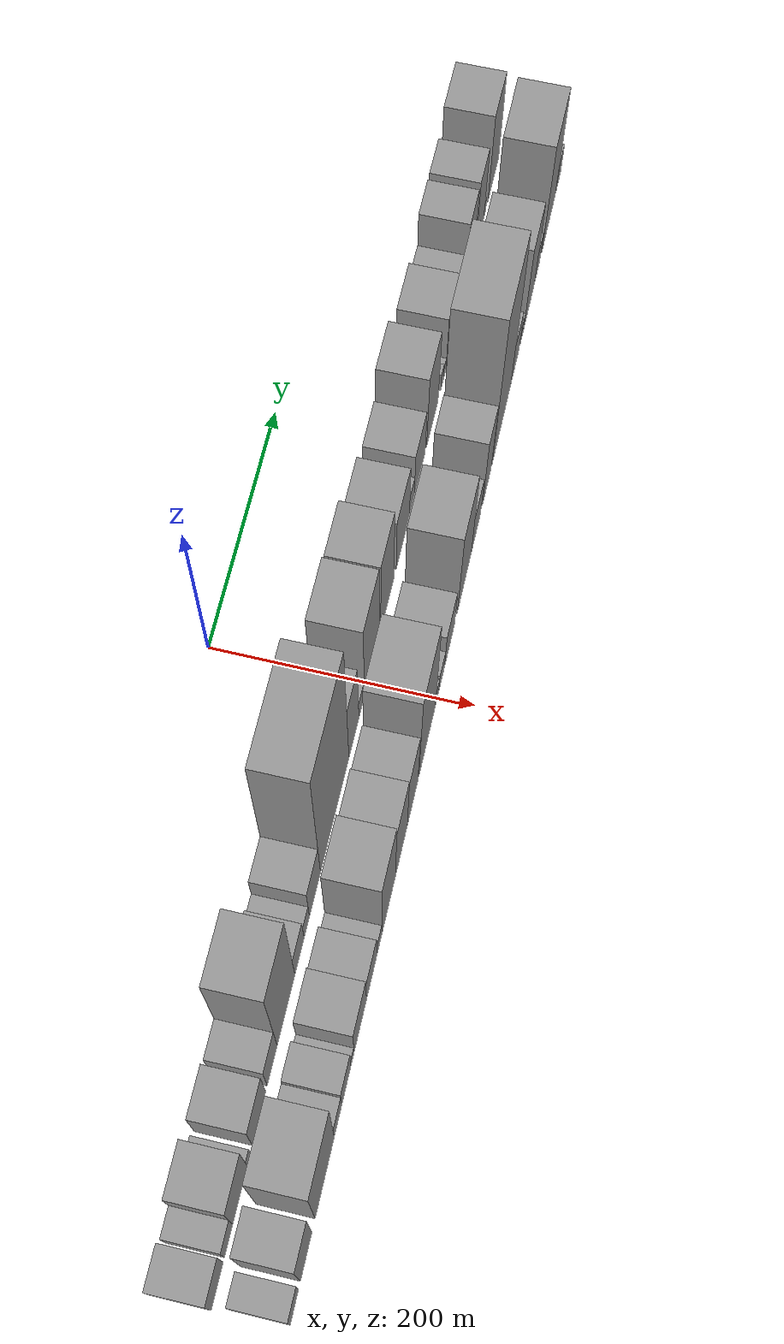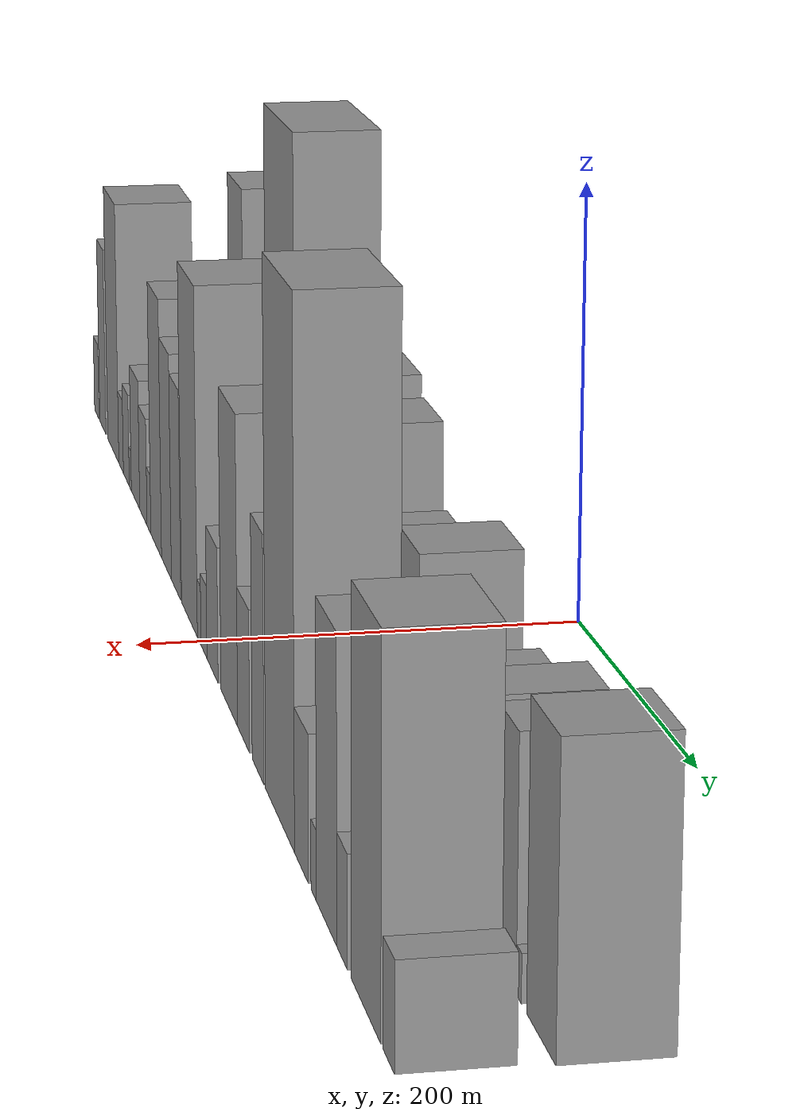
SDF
<sdf version="1.6">
 <world name="default">
  <scene>
   <sky><clouds><speed>12</speed></clouds></sky>
   <ambient>0.4 0.4 0.4 1</ambient>
   <background>0.7 0.7 0.7 1</background>
   <shadows>1</shadows>
  </scene>
  <gravity>0 0 -9.8066</gravity>
  <magnetic_field>6e-06 2.3e-05 -4.2e-05</magnetic_field>
  <physics default="0" name="default_physics" type="ode">
   <ode>
    <solver>
     <type>quick</type>
     <iters>10</iters>
     <sor>1.0</sor>
     <use_dynamic_moi_rescaling>0</use_dynamic_moi_rescaling>
    </solver>
    <constraints>
     <cfm>0</cfm>
     <erp>0.2</erp>
     <contact_max_correcting_vel>100</contact_max_correcting_vel>
     <contact_surface_layer>0.001</contact_surface_layer>
    </constraints>
   </ode>
   <max_step_size>0.004</max_step_size>
   <real_time_factor>1</real_time_factor>
   <real_time_update_rate>250</real_time_update_rate>
  </physics>
  <light name="sun" type="directional">
   <pose>0 0 10 0 0 0</pose>
   <diffuse>0.8 0.8 0.8 1</diffuse>
   <specular>0.2 0.2 0.2 1</specular>
   <attenuation>
    <range>1000</range>
    <constant>0.9</constant>
    <linear>0.01</linear>
    <quadratic>0.001</quadratic>
   </attenuation>
   <direction>-0.5 0.1 -0.9</direction>
  </light>
  <model name="building_1">
   <static>1</static>
   <pose>100.0000 -428.7235 0 0.000000 0.000000 0.000000</pose>
   <link name="link">
    <pose>0 0 25.50 0 0 0</pose>
    <collision name="collision"><geometry><box><size>40.0000 30.5529 51.0000</size></box></geometry></collision>
    <visual name="visual">
     <cast_shadows>0</cast_shadows>
     <geometry><box><size>40.0000 30.5529 51.0000</size></box></geometry>
     <material>
      <script>
       <uri>model://grey_wall/materials/scripts</uri>
       <uri>model://grey_wall/materials/textures</uri>
       <name>vrc/grey_wall</name>
      </script>
     </material>
    </visual>
   </link>
  </model>
  <model name="building_2">
   <static>1</static>
   <pose>100.0000 -399.7224 0 0.000000 0.000000 0.000000</pose>
   <link name="link">
    <pose>0 0 18.00 0 0 0</pose>
    <collision name="collision"><geometry><box><size>40.0000 21.4493 36.0000</size></box></geometry></collision>
    <visual name="visual">
     <cast_shadows>0</cast_shadows>
     <geometry><box><size>40.0000 21.4493 36.0000</size></box></geometry>
     <material>
      <script>
       <uri>model://grey_wall/materials/scripts</uri>
       <uri>model://grey_wall/materials/textures</uri>
       <name>vrc/grey_wall</name>
      </script>
     </material>
    </visual>
   </link>
  </model>
  <model name="building_3">
   <static>1</static>
   <pose>100.0000 -369.9463 0 0.000000 0.000000 0.000000</pose>
   <link name="link">
    <pose>0 0 37.50 0 0 0</pose>
    <collision name="collision"><geometry><box><size>40.0000 38.1030 75.0000</size></box></geometry></collision>
    <visual name="visual">
     <cast_shadows>0</cast_shadows>
     <geometry><box><size>40.0000 38.1030 75.0000</size></box></geometry>
     <material>
      <script>
       <uri>model://grey_wall/materials/scripts</uri>
       <uri>model://grey_wall/materials/textures</uri>
       <name>vrc/grey_wall</name>
      </script>
     </material>
    </visual>
   </link>
  </model>
  <model name="building_4">
   <static>1</static>
   <pose>100.0000 -346.6126 0 0.000000 0.000000 0.000000</pose>
   <link name="link">
    <pose>0 0 10.50 0 0 0</pose>
    <collision name="collision"><geometry><box><size>40.0000 8.5644 21.0000</size></box></geometry></collision>
    <visual name="visual">
     <cast_shadows>0</cast_shadows>
     <geometry><box><size>40.0000 8.5644 21.0000</size></box></geometry>
     <material>
      <script>
       <uri>model://grey_wall/materials/scripts</uri>
       <uri>model://grey_wall/materials/textures</uri>
       <name>vrc/grey_wall</name>
      </script>
     </material>
    </visual>
   </link>
  </model>
  <model name="building_5">
   <static>1</static>
   <pose>100.0000 -319.2629 0 0.000000 0.000000 0.000000</pose>
   <link name="link">
    <pose>0 0 31.50 0 0 0</pose>
    <collision name="collision"><geometry><box><size>40.0000 36.1349 63.0000</size></box></geometry></collision>
    <visual name="visual">
     <cast_shadows>0</cast_shadows>
     <geometry><box><size>40.0000 36.1349 63.0000</size></box></geometry>
     <material>
      <script>
       <uri>model://grey_wall/materials/scripts</uri>
       <uri>model://grey_wall/materials/textures</uri>
       <name>vrc/grey_wall</name>
      </script>
     </material>
    </visual>
   </link>
  </model>
  <model name="building_6">
   <static>1</static>
   <pose>100.0000 -283.4345 0 0.000000 0.000000 0.000000</pose>
   <link name="link">
    <pose>0 0 27.00 0 0 0</pose>
    <collision name="collision"><geometry><box><size>40.0000 27.5219 54.0000</size></box></geometry></collision>
    <visual name="visual">
     <cast_shadows>0</cast_shadows>
     <geometry><box><size>40.0000 27.5219 54.0000</size></box></geometry>
     <material>
      <script>
       <uri>model://grey_wall/materials/scripts</uri>
       <uri>model://grey_wall/materials/textures</uri>
       <name>vrc/grey_wall</name>
      </script>
     </material>
    </visual>
   </link>
  </model>
  <model name="building_7">
   <static>1</static>
   <pose>100.0000 -244.8544 0 0.000000 0.000000 0.000000</pose>
   <link name="link">
    <pose>0 0 81.00 0 0 0</pose>
    <collision name="collision"><geometry><box><size>40.0000 49.6384 162.0000</size></box></geometry></collision>
    <visual name="visual">
     <cast_shadows>0</cast_shadows>
     <geometry><box><size>40.0000 49.6384 162.0000</size></box></geometry>
     <material>
      <script>
       <uri>model://grey_wall/materials/scripts</uri>
       <uri>model://grey_wall/materials/textures</uri>
       <name>vrc/grey_wall</name>
      </script>
     </material>
    </visual>
   </link>
  </model>
  <model name="building_8">
   <static>1</static>
   <pose>100.0000 -206.8260 0 0.000000 0.000000 0.000000</pose>
   <link name="link">
    <pose>0 0 22.50 0 0 0</pose>
    <collision name="collision"><geometry><box><size>40.0000 26.4183 45.0000</size></box></geometry></collision>
    <visual name="visual">
     <cast_shadows>0</cast_shadows>
     <geometry><box><size>40.0000 26.4183 45.0000</size></box></geometry>
     <material>
      <script>
       <uri>model://grey_wall/materials/scripts</uri>
       <uri>model://grey_wall/materials/textures</uri>
       <name>vrc/grey_wall</name>
      </script>
     </material>
    </visual>
   </link>
  </model>
  <model name="building_9">
   <static>1</static>
   <pose>100.0000 -185.9107 0 0.000000 0.000000 0.000000</pose>
   <link name="link">
    <pose>0 0 15.00 0 0 0</pose>
    <collision name="collision"><geometry><box><size>40.0000 15.4123 30.0000</size></box></geometry></collision>
    <visual name="visual">
     <cast_shadows>0</cast_shadows>
     <geometry><box><size>40.0000 15.4123 30.0000</size></box></geometry>
     <material>
      <script>
       <uri>model://grey_wall/materials/scripts</uri>
       <uri>model://grey_wall/materials/textures</uri>
       <name>vrc/grey_wall</name>
      </script>
     </material>
    </visual>
   </link>
  </model>
  <model name="building_10">
   <static>1</static>
   <pose>100.0000 -162.0155 0 0.000000 0.000000 0.000000</pose>
   <link name="link">
    <pose>0 0 31.50 0 0 0</pose>
    <collision name="collision"><geometry><box><size>40.0000 32.3781 63.0000</size></box></geometry></collision>
    <visual name="visual">
     <cast_shadows>0</cast_shadows>
     <geometry><box><size>40.0000 32.3781 63.0000</size></box></geometry>
     <material>
      <script>
       <uri>model://grey_wall/materials/scripts</uri>
       <uri>model://grey_wall/materials/textures</uri>
       <name>vrc/grey_wall</name>
      </script>
     </material>
    </visual>
   </link>
  </model>
  <model name="building_11">
   <static>1</static>
   <pose>100.0000 -102.7328 0 0.000000 0.000000 0.000000</pose>
   <link name="link">
    <pose>0 0 108.00 0 0 0</pose>
    <collision name="collision"><geometry><box><size>40.0000 86.1872 216.0000</size></box></geometry></collision>
    <visual name="visual">
     <cast_shadows>0</cast_shadows>
     <geometry><box><size>40.0000 86.1872 216.0000</size></box></geometry>
     <material>
      <script>
       <uri>model://grey_wall/materials/scripts</uri>
       <uri>model://grey_wall/materials/textures</uri>
       <name>vrc/grey_wall</name>
      </script>
     </material>
    </visual>
   </link>
  </model>
  <model name="building_12">
   <static>1</static>
   <pose>100.0000 -44.0869 0 0.000000 0.000000 0.000000</pose>
   <link name="link">
    <pose>0 0 51.00 0 0 0</pose>
    <collision name="collision"><geometry><box><size>40.0000 31.1046 102.0000</size></box></geometry></collision>
    <visual name="visual">
     <cast_shadows>0</cast_shadows>
     <geometry><box><size>40.0000 31.1046 102.0000</size></box></geometry>
     <material>
      <script>
       <uri>model://grey_wall/materials/scripts</uri>
       <uri>model://grey_wall/materials/textures</uri>
       <name>vrc/grey_wall</name>
      </script>
     </material>
    </visual>
   </link>
  </model>
  <model name="building_13">
   <static>1</static>
   <pose>100.0000 -19.5839 0 0.000000 0.000000 0.000000</pose>
   <link name="link">
    <pose>0 0 15.00 0 0 0</pose>
    <collision name="collision"><geometry><box><size>40.0000 17.9015 30.0000</size></box></geometry></collision>
    <visual name="visual">
     <cast_shadows>0</cast_shadows>
     <geometry><box><size>40.0000 17.9015 30.0000</size></box></geometry>
     <material>
      <script>
       <uri>model://grey_wall/materials/scripts</uri>
       <uri>model://grey_wall/materials/textures</uri>
       <name>vrc/grey_wall</name>
      </script>
     </material>
    </visual>
   </link>
  </model>
  <model name="building_14">
   <static>1</static>
   <pose>100.0000 13.0311 0 0.000000 0.000000 0.000000</pose>
   <link name="link">
    <pose>0 0 63.00 0 0 0</pose>
    <collision name="collision"><geometry><box><size>40.0000 47.3285 126.0000</size></box></geometry></collision>
    <visual name="visual">
     <cast_shadows>0</cast_shadows>
     <geometry><box><size>40.0000 47.3285 126.0000</size></box></geometry>
     <material>
      <script>
       <uri>model://grey_wall/materials/scripts</uri>
       <uri>model://grey_wall/materials/textures</uri>
       <name>vrc/grey_wall</name>
      </script>
     </material>
    </visual>
   </link>
  </model>
  <model name="building_15">
   <static>1</static>
   <pose>100.0000 63.1521 0 0.000000 0.000000 0.000000</pose>
   <link name="link">
    <pose>0 0 58.50 0 0 0</pose>
    <collision name="collision"><geometry><box><size>40.0000 42.9134 117.0000</size></box></geometry></collision>
    <visual name="visual">
     <cast_shadows>0</cast_shadows>
     <geometry><box><size>40.0000 42.9134 117.0000</size></box></geometry>
     <material>
      <script>
       <uri>model://grey_wall/materials/scripts</uri>
       <uri>model://grey_wall/materials/textures</uri>
       <name>vrc/grey_wall</name>
      </script>
     </material>
    </visual>
   </link>
  </model>
  <model name="building_16">
   <static>1</static>
   <pose>100.0000 115.0331 0 0.000000 0.000000 0.000000</pose>
   <link name="link">
    <pose>0 0 40.50 0 0 0</pose>
    <collision name="collision"><geometry><box><size>40.0000 44.8485 81.0000</size></box></geometry></collision>
    <visual name="visual">
     <cast_shadows>0</cast_shadows>
     <geometry><box><size>40.0000 44.8485 81.0000</size></box></geometry>
     <material>
      <script>
       <uri>model://grey_wall/materials/scripts</uri>
       <uri>model://grey_wall/materials/textures</uri>
       <name>vrc/grey_wall</name>
      </script>
     </material>
    </visual>
   </link>
  </model>
  <model name="building_17">
   <static>1</static>
   <pose>100.0000 145.7605 0 0.000000 0.000000 0.000000</pose>
   <link name="link">
    <pose>0 0 16.50 0 0 0</pose>
    <collision name="collision"><geometry><box><size>40.0000 16.6065 33.0000</size></box></geometry></collision>
    <visual name="visual">
     <cast_shadows>0</cast_shadows>
     <geometry><box><size>40.0000 16.6065 33.0000</size></box></geometry>
     <material>
      <script>
       <uri>model://grey_wall/materials/scripts</uri>
       <uri>model://grey_wall/materials/textures</uri>
       <name>vrc/grey_wall</name>
      </script>
     </material>
    </visual>
   </link>
  </model>
  <model name="building_18">
   <static>1</static>
   <pose>100.0000 173.0897 0 0.000000 0.000000 0.000000</pose>
   <link name="link">
    <pose>0 0 33.00 0 0 0</pose>
    <collision name="collision"><geometry><box><size>40.0000 38.0519 66.0000</size></box></geometry></collision>
    <visual name="visual">
     <cast_shadows>0</cast_shadows>
     <geometry><box><size>40.0000 38.0519 66.0000</size></box></geometry>
     <material>
      <script>
       <uri>model://grey_wall/materials/scripts</uri>
       <uri>model://grey_wall/materials/textures</uri>
       <name>vrc/grey_wall</name>
      </script>
     </material>
    </visual>
   </link>
  </model>
  <model name="building_19">
   <static>1</static>
   <pose>100.0000 217.4829 0 0.000000 0.000000 0.000000</pose>
   <link name="link">
    <pose>0 0 52.50 0 0 0</pose>
    <collision name="collision"><geometry><box><size>40.0000 40.7344 105.0000</size></box></geometry></collision>
    <visual name="visual">
     <cast_shadows>0</cast_shadows>
     <geometry><box><size>40.0000 40.7344 105.0000</size></box></geometry>
     <material>
      <script>
       <uri>model://grey_wall/materials/scripts</uri>
       <uri>model://grey_wall/materials/textures</uri>
       <name>vrc/grey_wall</name>
      </script>
     </material>
    </visual>
   </link>
  </model>
  <model name="building_20">
   <static>1</static>
   <pose>100.0000 252.7990 0 0.000000 0.000000 0.000000</pose>
   <link name="link">
    <pose>0 0 12.00 0 0 0</pose>
    <collision name="collision"><geometry><box><size>40.0000 9.8977 24.0000</size></box></geometry></collision>
    <visual name="visual">
     <cast_shadows>0</cast_shadows>
     <geometry><box><size>40.0000 9.8977 24.0000</size></box></geometry>
     <material>
      <script>
       <uri>model://grey_wall/materials/scripts</uri>
       <uri>model://grey_wall/materials/textures</uri>
       <name>vrc/grey_wall</name>
      </script>
     </material>
    </visual>
   </link>
  </model>
  <model name="building_21">
   <static>1</static>
   <pose>100.0000 262.1936 0 0.000000 0.000000 0.000000</pose>
   <link name="link">
    <pose>0 0 9.00 0 0 0</pose>
    <collision name="collision"><geometry><box><size>40.0000 8.8914 18.0000</size></box></geometry></collision>
    <visual name="visual">
     <cast_shadows>0</cast_shadows>
     <geometry><box><size>40.0000 8.8914 18.0000</size></box></geometry>
     <material>
      <script>
       <uri>model://grey_wall/materials/scripts</uri>
       <uri>model://grey_wall/materials/textures</uri>
       <name>vrc/grey_wall</name>
      </script>
     </material>
    </visual>
   </link>
  </model>
  <model name="building_22">
   <static>1</static>
   <pose>100.0000 287.1863 0 0.000000 0.000000 0.000000</pose>
   <link name="link">
    <pose>0 0 37.50 0 0 0</pose>
    <collision name="collision"><geometry><box><size>40.0000 41.0940 75.0000</size></box></geometry></collision>
    <visual name="visual">
     <cast_shadows>0</cast_shadows>
     <geometry><box><size>40.0000 41.0940 75.0000</size></box></geometry>
     <material>
      <script>
       <uri>model://grey_wall/materials/scripts</uri>
       <uri>model://grey_wall/materials/textures</uri>
       <name>vrc/grey_wall</name>
      </script>
     </material>
    </visual>
   </link>
  </model>
  <model name="building_23">
   <static>1</static>
   <pose>100.0000 325.1949 0 0.000000 0.000000 0.000000</pose>
   <link name="link">
    <pose>0 0 25.50 0 0 0</pose>
    <collision name="collision"><geometry><box><size>40.0000 28.9232 51.0000</size></box></geometry></collision>
    <visual name="visual">
     <cast_shadows>0</cast_shadows>
     <geometry><box><size>40.0000 28.9232 51.0000</size></box></geometry>
     <material>
      <script>
       <uri>model://grey_wall/materials/scripts</uri>
       <uri>model://grey_wall/materials/textures</uri>
       <name>vrc/grey_wall</name>
      </script>
     </material>
    </visual>
   </link>
  </model>
  <model name="building_24">
   <static>1</static>
   <pose>100.0000 355.4796 0 0.000000 0.000000 0.000000</pose>
   <link name="link">
    <pose>0 0 46.50 0 0 0</pose>
    <collision name="collision"><geometry><box><size>40.0000 31.6461 93.0000</size></box></geometry></collision>
    <visual name="visual">
     <cast_shadows>0</cast_shadows>
     <geometry><box><size>40.0000 31.6461 93.0000</size></box></geometry>
     <material>
      <script>
       <uri>model://grey_wall/materials/scripts</uri>
       <uri>model://grey_wall/materials/textures</uri>
       <name>vrc/grey_wall</name>
      </script>
     </material>
    </visual>
   </link>
  </model>
  <model name="building_25">
   <static>1</static>
   <pose>100.0000 393.4196 0 0.000000 0.000000 0.000000</pose>
   <link name="link">
    <pose>0 0 46.50 0 0 0</pose>
    <collision name="collision"><geometry><box><size>40.0000 32.2339 93.0000</size></box></geometry></collision>
    <visual name="visual">
     <cast_shadows>0</cast_shadows>
     <geometry><box><size>40.0000 32.2339 93.0000</size></box></geometry>
     <material>
      <script>
       <uri>model://grey_wall/materials/scripts</uri>
       <uri>model://grey_wall/materials/textures</uri>
       <name>vrc/grey_wall</name>
      </script>
     </material>
    </visual>
   </link>
  </model>
  <model name="building_26">
   <static>1</static>
   <pose>100.0000 413.5201 0 0.000000 0.000000 0.000000</pose>
   <link name="link">
    <pose>0 0 9.00 0 0 0</pose>
    <collision name="collision"><geometry><box><size>40.0000 7.9671 18.0000</size></box></geometry></collision>
    <visual name="visual">
     <cast_shadows>0</cast_shadows>
     <geometry><box><size>40.0000 7.9671 18.0000</size></box></geometry>
     <material>
      <script>
       <uri>model://grey_wall/materials/scripts</uri>
       <uri>model://grey_wall/materials/textures</uri>
       <name>vrc/grey_wall</name>
      </script>
     </material>
    </visual>
   </link>
  </model>
  <model name="building_27">
   <static>1</static>
   <pose>100.0000 446.7843 0 0.000000 0.000000 0.000000</pose>
   <link name="link">
    <pose>0 0 55.50 0 0 0</pose>
    <collision name="collision"><geometry><box><size>40.0000 42.5614 111.0000</size></box></geometry></collision>
    <visual name="visual">
     <cast_shadows>0</cast_shadows>
     <geometry><box><size>40.0000 42.5614 111.0000</size></box></geometry>
     <material>
      <script>
       <uri>model://grey_wall/materials/scripts</uri>
       <uri>model://grey_wall/materials/textures</uri>
       <name>vrc/grey_wall</name>
      </script>
     </material>
    </visual>
   </link>
  </model>
  <model name="building_28">
   <static>1</static>
   <pose>152.0000 -429.7385 0 0.000000 0.000000 0.000000</pose>
   <link name="link">
    <pose>0 0 21.00 0 0 0</pose>
    <collision name="collision"><geometry><box><size>40.0000 22.5230 42.0000</size></box></geometry></collision>
    <visual name="visual">
     <cast_shadows>0</cast_shadows>
     <geometry><box><size>40.0000 22.5230 42.0000</size></box></geometry>
     <material>
      <script>
       <uri>model://grey_wall/materials/scripts</uri>
       <uri>model://grey_wall/materials/textures</uri>
       <name>vrc/grey_wall</name>
      </script>
     </material>
    </visual>
   </link>
  </model>
  <model name="building_29">
   <static>1</static>
   <pose>152.0000 -397.9014 0 0.000000 0.000000 0.000000</pose>
   <link name="link">
    <pose>0 0 51.00 0 0 0</pose>
    <collision name="collision"><geometry><box><size>40.0000 31.1514 102.0000</size></box></geometry></collision>
    <visual name="visual">
     <cast_shadows>0</cast_shadows>
     <geometry><box><size>40.0000 31.1514 102.0000</size></box></geometry>
     <material>
      <script>
       <uri>model://grey_wall/materials/scripts</uri>
       <uri>model://grey_wall/materials/textures</uri>
       <name>vrc/grey_wall</name>
      </script>
     </material>
    </visual>
   </link>
  </model>
  <model name="building_30">
   <static>1</static>
   <pose>152.0000 -346.6475 0 0.000000 0.000000 0.000000</pose>
   <link name="link">
    <pose>0 0 69.00 0 0 0</pose>
    <collision name="collision"><geometry><box><size>40.0000 53.3563 138.0000</size></box></geometry></collision>
    <visual name="visual">
     <cast_shadows>0</cast_shadows>
     <geometry><box><size>40.0000 53.3563 138.0000</size></box></geometry>
     <material>
      <script>
       <uri>model://grey_wall/materials/scripts</uri>
       <uri>model://grey_wall/materials/textures</uri>
       <name>vrc/grey_wall</name>
      </script>
     </material>
    </visual>
   </link>
  </model>
  <model name="building_31">
   <static>1</static>
   <pose>152.0000 -309.2004 0 0.000000 0.000000 0.000000</pose>
   <link name="link">
    <pose>0 0 19.50 0 0 0</pose>
    <collision name="collision"><geometry><box><size>40.0000 21.5380 39.0000</size></box></geometry></collision>
    <visual name="visual">
     <cast_shadows>0</cast_shadows>
     <geometry><box><size>40.0000 21.5380 39.0000</size></box></geometry>
     <material>
      <script>
       <uri>model://grey_wall/materials/scripts</uri>
       <uri>model://grey_wall/materials/textures</uri>
       <name>vrc/grey_wall</name>
      </script>
     </material>
    </visual>
   </link>
  </model>
  <model name="building_32">
   <static>1</static>
   <pose>152.0000 -285.0999 0 0.000000 0.000000 0.000000</pose>
   <link name="link">
    <pose>0 0 24.00 0 0 0</pose>
    <collision name="collision"><geometry><box><size>40.0000 26.6628 48.0000</size></box></geometry></collision>
    <visual name="visual">
     <cast_shadows>0</cast_shadows>
     <geometry><box><size>40.0000 26.6628 48.0000</size></box></geometry>
     <material>
      <script>
       <uri>model://grey_wall/materials/scripts</uri>
       <uri>model://grey_wall/materials/textures</uri>
       <name>vrc/grey_wall</name>
      </script>
     </material>
    </visual>
   </link>
  </model>
  <model name="building_33">
   <static>1</static>
   <pose>152.0000 -267.1268 0 0.000000 0.000000 0.000000</pose>
   <link name="link">
    <pose>0 0 10.50 0 0 0</pose>
    <collision name="collision"><geometry><box><size>40.0000 9.2833 21.0000</size></box></geometry></collision>
    <visual name="visual">
     <cast_shadows>0</cast_shadows>
     <geometry><box><size>40.0000 9.2833 21.0000</size></box></geometry>
     <material>
      <script>
       <uri>model://grey_wall/materials/scripts</uri>
       <uri>model://grey_wall/materials/textures</uri>
       <name>vrc/grey_wall</name>
      </script>
     </material>
    </visual>
   </link>
  </model>
  <model name="building_34">
   <static>1</static>
   <pose>152.0000 -244.1699 0 0.000000 0.000000 0.000000</pose>
   <link name="link">
    <pose>0 0 33.00 0 0 0</pose>
    <collision name="collision"><geometry><box><size>40.0000 36.6305 66.0000</size></box></geometry></collision>
    <visual name="visual">
     <cast_shadows>0</cast_shadows>
     <geometry><box><size>40.0000 36.6305 66.0000</size></box></geometry>
     <material>
      <script>
       <uri>model://grey_wall/materials/scripts</uri>
       <uri>model://grey_wall/materials/textures</uri>
       <name>vrc/grey_wall</name>
      </script>
     </material>
    </visual>
   </link>
  </model>
  <model name="building_35">
   <static>1</static>
   <pose>152.0000 -210.4087 0 0.000000 0.000000 0.000000</pose>
   <link name="link">
    <pose>0 0 27.00 0 0 0</pose>
    <collision name="collision"><geometry><box><size>40.0000 30.8920 54.0000</size></box></geometry></collision>
    <visual name="visual">
     <cast_shadows>0</cast_shadows>
     <geometry><box><size>40.0000 30.8920 54.0000</size></box></geometry>
     <material>
      <script>
       <uri>model://grey_wall/materials/scripts</uri>
       <uri>model://grey_wall/materials/textures</uri>
       <name>vrc/grey_wall</name>
      </script>
     </material>
    </visual>
   </link>
  </model>
  <model name="building_36">
   <static>1</static>
   <pose>152.0000 -187.1488 0 0.000000 0.000000 0.000000</pose>
   <link name="link">
    <pose>0 0 15.00 0 0 0</pose>
    <collision name="collision"><geometry><box><size>40.0000 15.6278 30.0000</size></box></geometry></collision>
    <visual name="visual">
     <cast_shadows>0</cast_shadows>
     <geometry><box><size>40.0000 15.6278 30.0000</size></box></geometry>
     <material>
      <script>
       <uri>model://grey_wall/materials/scripts</uri>
       <uri>model://grey_wall/materials/textures</uri>
       <name>vrc/grey_wall</name>
      </script>
     </material>
    </visual>
   </link>
  </model>
  <model name="building_37">
   <static>1</static>
   <pose>152.0000 -158.0648 0 0.000000 0.000000 0.000000</pose>
   <link name="link">
    <pose>0 0 63.00 0 0 0</pose>
    <collision name="collision"><geometry><box><size>40.0000 42.5401 126.0000</size></box></geometry></collision>
    <visual name="visual">
     <cast_shadows>0</cast_shadows>
     <geometry><box><size>40.0000 42.5401 126.0000</size></box></geometry>
     <material>
      <script>
       <uri>model://grey_wall/materials/scripts</uri>
       <uri>model://grey_wall/materials/textures</uri>
       <name>vrc/grey_wall</name>
      </script>
     </material>
    </visual>
   </link>
  </model>
  <model name="building_38">
   <static>1</static>
   <pose>152.0000 -117.9856 0 0.000000 0.000000 0.000000</pose>
   <link name="link">
    <pose>0 0 54.00 0 0 0</pose>
    <collision name="collision"><geometry><box><size>40.0000 37.6183 108.0000</size></box></geometry></collision>
    <visual name="visual">
     <cast_shadows>0</cast_shadows>
     <geometry><box><size>40.0000 37.6183 108.0000</size></box></geometry>
     <material>
      <script>
       <uri>model://grey_wall/materials/scripts</uri>
       <uri>model://grey_wall/materials/textures</uri>
       <name>vrc/grey_wall</name>
      </script>
     </material>
    </visual>
   </link>
  </model>
  <model name="building_39">
   <static>1</static>
   <pose>152.0000 -82.1366 0 0.000000 0.000000 0.000000</pose>
   <link name="link">
    <pose>0 0 49.50 0 0 0</pose>
    <collision name="collision"><geometry><box><size>40.0000 34.0799 99.0000</size></box></geometry></collision>
    <visual name="visual">
     <cast_shadows>0</cast_shadows>
     <geometry><box><size>40.0000 34.0799 99.0000</size></box></geometry>
     <material>
      <script>
       <uri>model://grey_wall/materials/scripts</uri>
       <uri>model://grey_wall/materials/textures</uri>
       <name>vrc/grey_wall</name>
      </script>
     </material>
    </visual>
   </link>
  </model>
  <model name="building_40">
   <static>1</static>
   <pose>152.0000 -34.7592 0 0.000000 0.000000 0.000000</pose>
   <link name="link">
    <pose>0 0 79.50 0 0 0</pose>
    <collision name="collision"><geometry><box><size>40.0000 54.6748 159.0000</size></box></geometry></collision>
    <visual name="visual">
     <cast_shadows>0</cast_shadows>
     <geometry><box><size>40.0000 54.6748 159.0000</size></box></geometry>
     <material>
      <script>
       <uri>model://grey_wall/materials/scripts</uri>
       <uri>model://grey_wall/materials/textures</uri>
       <name>vrc/grey_wall</name>
      </script>
     </material>
    </visual>
   </link>
  </model>
  <model name="building_41">
   <static>1</static>
   <pose>152.0000 -1.3934 0 0.000000 0.000000 0.000000</pose>
   <link name="link">
    <pose>0 0 13.50 0 0 0</pose>
    <collision name="collision"><geometry><box><size>40.0000 12.0569 27.0000</size></box></geometry></collision>
    <visual name="visual">
     <cast_shadows>0</cast_shadows>
     <geometry><box><size>40.0000 12.0569 27.0000</size></box></geometry>
     <material>
      <script>
       <uri>model://grey_wall/materials/scripts</uri>
       <uri>model://grey_wall/materials/textures</uri>
       <name>vrc/grey_wall</name>
      </script>
     </material>
    </visual>
   </link>
  </model>
  <model name="building_42">
   <static>1</static>
   <pose>152.0000 14.2986 0 0.000000 0.000000 0.000000</pose>
   <link name="link">
    <pose>0 0 16.50 0 0 0</pose>
    <collision name="collision"><geometry><box><size>40.0000 19.3270 33.0000</size></box></geometry></collision>
    <visual name="visual">
     <cast_shadows>0</cast_shadows>
     <geometry><box><size>40.0000 19.3270 33.0000</size></box></geometry>
     <material>
      <script>
       <uri>model://grey_wall/materials/scripts</uri>
       <uri>model://grey_wall/materials/textures</uri>
       <name>vrc/grey_wall</name>
      </script>
     </material>
    </visual>
   </link>
  </model>
  <model name="building_43">
   <static>1</static>
   <pose>152.0000 41.5637 0 0.000000 0.000000 0.000000</pose>
   <link name="link">
    <pose>0 0 30.00 0 0 0</pose>
    <collision name="collision"><geometry><box><size>40.0000 35.2033 60.0000</size></box></geometry></collision>
    <visual name="visual">
     <cast_shadows>0</cast_shadows>
     <geometry><box><size>40.0000 35.2033 60.0000</size></box></geometry>
     <material>
      <script>
       <uri>model://grey_wall/materials/scripts</uri>
       <uri>model://grey_wall/materials/textures</uri>
       <name>vrc/grey_wall</name>
      </script>
     </material>
    </visual>
   </link>
  </model>
  <model name="building_44">
   <static>1</static>
   <pose>152.0000 92.8285 0 0.000000 0.000000 0.000000</pose>
   <link name="link">
    <pose>0 0 66.00 0 0 0</pose>
    <collision name="collision"><geometry><box><size>40.0000 49.3262 132.0000</size></box></geometry></collision>
    <visual name="visual">
     <cast_shadows>0</cast_shadows>
     <geometry><box><size>40.0000 49.3262 132.0000</size></box></geometry>
     <material>
      <script>
       <uri>model://grey_wall/materials/scripts</uri>
       <uri>model://grey_wall/materials/textures</uri>
       <name>vrc/grey_wall</name>
      </script>
     </material>
    </visual>
   </link>
  </model>
  <model name="building_45">
   <static>1</static>
   <pose>152.0000 134.2605 0 0.000000 0.000000 0.000000</pose>
   <link name="link">
    <pose>0 0 30.00 0 0 0</pose>
    <collision name="collision"><geometry><box><size>40.0000 33.5379 60.0000</size></box></geometry></collision>
    <visual name="visual">
     <cast_shadows>0</cast_shadows>
     <geometry><box><size>40.0000 33.5379 60.0000</size></box></geometry>
     <material>
      <script>
       <uri>model://grey_wall/materials/scripts</uri>
       <uri>model://grey_wall/materials/textures</uri>
       <name>vrc/grey_wall</name>
      </script>
     </material>
    </visual>
   </link>
  </model>
  <model name="building_46">
   <static>1</static>
   <pose>152.0000 173.7770 0 0.000000 0.000000 0.000000</pose>
   <link name="link">
    <pose>0 0 51.00 0 0 0</pose>
    <collision name="collision"><geometry><box><size>40.0000 31.4952 102.0000</size></box></geometry></collision>
    <visual name="visual">
     <cast_shadows>0</cast_shadows>
     <geometry><box><size>40.0000 31.4952 102.0000</size></box></geometry>
     <material>
      <script>
       <uri>model://grey_wall/materials/scripts</uri>
       <uri>model://grey_wall/materials/textures</uri>
       <name>vrc/grey_wall</name>
      </script>
     </material>
    </visual>
   </link>
  </model>
  <model name="building_47">
   <static>1</static>
   <pose>152.0000 229.1877 0 0.000000 0.000000 0.000000</pose>
   <link name="link">
    <pose>0 0 106.50 0 0 0</pose>
    <collision name="collision"><geometry><box><size>40.0000 71.3261 213.0000</size></box></geometry></collision>
    <visual name="visual">
     <cast_shadows>0</cast_shadows>
     <geometry><box><size>40.0000 71.3261 213.0000</size></box></geometry>
     <material>
      <script>
       <uri>model://grey_wall/materials/scripts</uri>
       <uri>model://grey_wall/materials/textures</uri>
       <name>vrc/grey_wall</name>
      </script>
     </material>
    </visual>
   </link>
  </model>
  <model name="building_48">
   <static>1</static>
   <pose>152.0000 280.6505 0 0.000000 0.000000 0.000000</pose>
   <link name="link">
    <pose>0 0 28.50 0 0 0</pose>
    <collision name="collision"><geometry><box><size>40.0000 31.5996 57.0000</size></box></geometry></collision>
    <visual name="visual">
     <cast_shadows>0</cast_shadows>
     <geometry><box><size>40.0000 31.5996 57.0000</size></box></geometry>
     <material>
      <script>
       <uri>model://grey_wall/materials/scripts</uri>
       <uri>model://grey_wall/materials/textures</uri>
       <name>vrc/grey_wall</name>
      </script>
     </material>
    </visual>
   </link>
  </model>
  <model name="building_49">
   <static>1</static>
   <pose>152.0000 308.2717 0 0.000000 0.000000 0.000000</pose>
   <link name="link">
    <pose>0 0 13.50 0 0 0</pose>
    <collision name="collision"><geometry><box><size>40.0000 11.6427 27.0000</size></box></geometry></collision>
    <visual name="visual">
     <cast_shadows>0</cast_shadows>
     <geometry><box><size>40.0000 11.6427 27.0000</size></box></geometry>
     <material>
      <script>
       <uri>model://grey_wall/materials/scripts</uri>
       <uri>model://grey_wall/materials/textures</uri>
       <name>vrc/grey_wall</name>
      </script>
     </material>
    </visual>
   </link>
  </model>
  <model name="building_50">
   <static>1</static>
   <pose>152.0000 335.6653 0 0.000000 0.000000 0.000000</pose>
   <link name="link">
    <pose>0 0 57.00 0 0 0</pose>
    <collision name="collision"><geometry><box><size>40.0000 43.1445 114.0000</size></box></geometry></collision>
    <visual name="visual">
     <cast_shadows>0</cast_shadows>
     <geometry><box><size>40.0000 43.1445 114.0000</size></box></geometry>
     <material>
      <script>
       <uri>model://grey_wall/materials/scripts</uri>
       <uri>model://grey_wall/materials/textures</uri>
       <name>vrc/grey_wall</name>
      </script>
     </material>
    </visual>
   </link>
  </model>
  <model name="building_51">
   <static>1</static>
   <pose>152.0000 368.0572 0 0.000000 0.000000 0.000000</pose>
   <link name="link">
    <pose>0 0 21.00 0 0 0</pose>
    <collision name="collision"><geometry><box><size>40.0000 21.6393 42.0000</size></box></geometry></collision>
    <visual name="visual">
     <cast_shadows>0</cast_shadows>
     <geometry><box><size>40.0000 21.6393 42.0000</size></box></geometry>
     <material>
      <script>
       <uri>model://grey_wall/materials/scripts</uri>
       <uri>model://grey_wall/materials/textures</uri>
       <name>vrc/grey_wall</name>
      </script>
     </material>
    </visual>
   </link>
  </model>
  <model name="building_52">
   <static>1</static>
   <pose>152.0000 414.1881 0 0.000000 0.000000 0.000000</pose>
   <link name="link">
    <pose>0 0 70.50 0 0 0</pose>
    <collision name="collision"><geometry><box><size>40.0000 54.6224 141.0000</size></box></geometry></collision>
    <visual name="visual">
     <cast_shadows>0</cast_shadows>
     <geometry><box><size>40.0000 54.6224 141.0000</size></box></geometry>
     <material>
      <script>
       <uri>model://grey_wall/materials/scripts</uri>
       <uri>model://grey_wall/materials/textures</uri>
       <name>vrc/grey_wall</name>
      </script>
     </material>
    </visual>
   </link>
  </model>
  <model name="building_53">
   <static>1</static>
   <pose>152.0000 455.5478 0 0.000000 0.000000 0.000000</pose>
   <link name="link">
    <pose>0 0 19.50 0 0 0</pose>
    <collision name="collision"><geometry><box><size>40.0000 20.0971 39.0000</size></box></geometry></collision>
    <visual name="visual">
     <cast_shadows>0</cast_shadows>
     <geometry><box><size>40.0000 20.0971 39.0000</size></box></geometry>
     <material>
      <script>
       <uri>model://grey_wall/materials/scripts</uri>
       <uri>model://grey_wall/materials/textures</uri>
       <name>vrc/grey_wall</name>
      </script>
     </material>
    </visual>
   </link>
  </model>
 </world>
</sdf>
